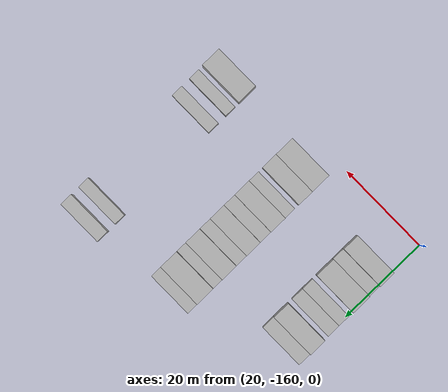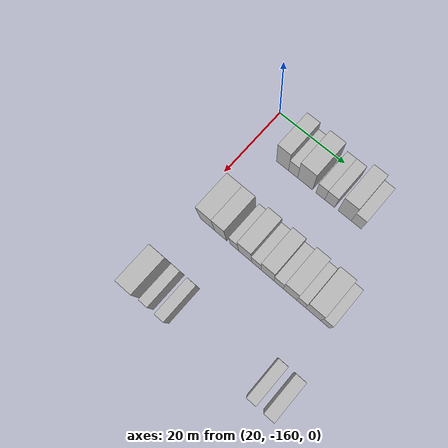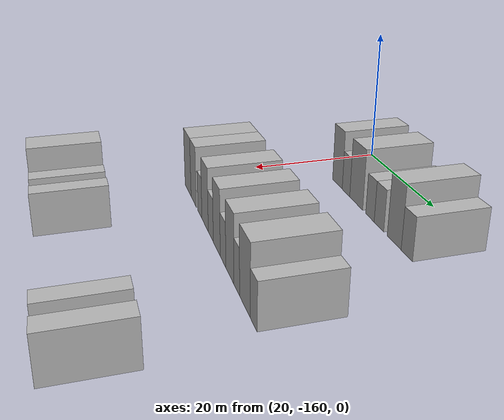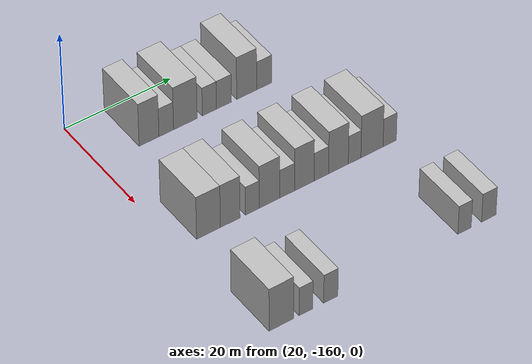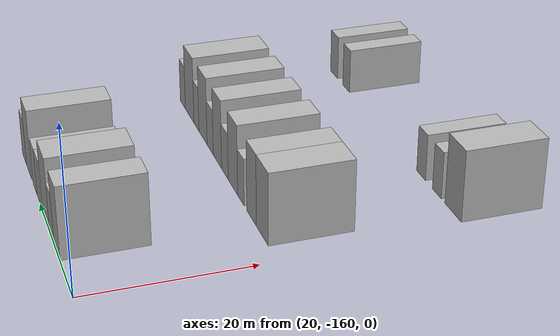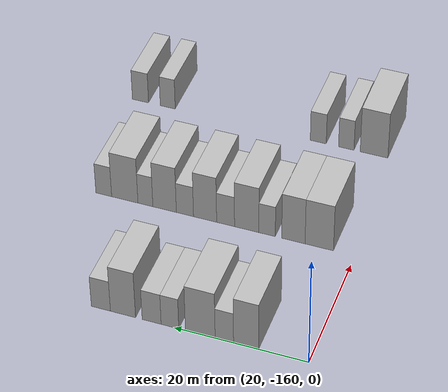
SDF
<sdf version="1.6">
 <world name="default">
  <model name="building_21">
   <static>1</static>
   <pose>25.0000 -150.7308 0 0.000000 0.000000 0.000000</pose>
   <link name="link">
    <pose>0 0 4.50 0 0 0</pose>
    <collision name="collision"><geometry><box><size>10.0000 3.7281 9.0000</size></box></geometry></collision>
    <visual name="visual">
     <cast_shadows>0</cast_shadows>
     <geometry><box><size>10.0000 3.7281 9.0000</size></box></geometry>
     <material>
      <script>
       <uri>model://HANNAS_wall/materials/scripts</uri>
       <uri>model://HANNAS_wall/materials/textures</uri>
       <name>vrc/HANNAS_wall</name>
      </script>
     </material>
    </visual>
   </link>
  </model>
  <model name="building_22">
   <static>1</static>
   <pose>25.0000 -147.4935 0 0.000000 0.000000 0.000000</pose>
   <link name="link">
    <pose>0 0 3.00 0 0 0</pose>
    <collision name="collision"><geometry><box><size>10.0000 2.7465 6.0000</size></box></geometry></collision>
    <visual name="visual">
     <cast_shadows>0</cast_shadows>
     <geometry><box><size>10.0000 2.7465 6.0000</size></box></geometry>
     <material>
      <script>
       <uri>model://HANNAS_wall/materials/scripts</uri>
       <uri>model://HANNAS_wall/materials/textures</uri>
       <name>vrc/HANNAS_wall</name>
      </script>
     </material>
    </visual>
   </link>
  </model>
  <model name="building_23">
   <static>1</static>
   <pose>25.0000 -143.8835 0 0.000000 0.000000 0.000000</pose>
   <link name="link">
    <pose>0 0 4.50 0 0 0</pose>
    <collision name="collision"><geometry><box><size>10.0000 4.4735 9.0000</size></box></geometry></collision>
    <visual name="visual">
     <cast_shadows>0</cast_shadows>
     <geometry><box><size>10.0000 4.4735 9.0000</size></box></geometry>
     <material>
      <script>
       <uri>model://HANNAS_wall/materials/scripts</uri>
       <uri>model://HANNAS_wall/materials/textures</uri>
       <name>vrc/HANNAS_wall</name>
      </script>
     </material>
    </visual>
   </link>
  </model>
  <model name="building_24">
   <static>1</static>
   <pose>25.0000 -139.3091 0 0.000000 0.000000 0.000000</pose>
   <link name="link">
    <pose>0 0 3.00 0 0 0</pose>
    <collision name="collision"><geometry><box><size>10.0000 2.6754 6.0000</size></box></geometry></collision>
    <visual name="visual">
     <cast_shadows>0</cast_shadows>
     <geometry><box><size>10.0000 2.6754 6.0000</size></box></geometry>
     <material>
      <script>
       <uri>model://HANNAS_wall/materials/scripts</uri>
       <uri>model://HANNAS_wall/materials/textures</uri>
       <name>vrc/HANNAS_wall</name>
      </script>
     </material>
    </visual>
   </link>
  </model>
  <model name="building_25">
   <static>1</static>
   <pose>25.0000 -136.5263 0 0.000000 0.000000 0.000000</pose>
   <link name="link">
    <pose>0 0 3.00 0 0 0</pose>
    <collision name="collision"><geometry><box><size>10.0000 2.8900 6.0000</size></box></geometry></collision>
    <visual name="visual">
     <cast_shadows>0</cast_shadows>
     <geometry><box><size>10.0000 2.8900 6.0000</size></box></geometry>
     <material>
      <script>
       <uri>model://HANNAS_wall/materials/scripts</uri>
       <uri>model://HANNAS_wall/materials/textures</uri>
       <name>vrc/HANNAS_wall</name>
      </script>
     </material>
    </visual>
   </link>
  </model>
  <model name="building_26">
   <static>1</static>
   <pose>25.0000 -132.1540 0 0.000000 0.000000 0.000000</pose>
   <link name="link">
    <pose>0 0 4.50 0 0 0</pose>
    <collision name="collision"><geometry><box><size>10.0000 3.8547 9.0000</size></box></geometry></collision>
    <visual name="visual">
     <cast_shadows>0</cast_shadows>
     <geometry><box><size>10.0000 3.8547 9.0000</size></box></geometry>
     <material>
      <script>
       <uri>model://HANNAS_wall/materials/scripts</uri>
       <uri>model://HANNAS_wall/materials/textures</uri>
       <name>vrc/HANNAS_wall</name>
      </script>
     </material>
    </visual>
   </link>
  </model>
  <model name="building_27">
   <static>1</static>
   <pose>25.0000 -128.7550 0 0.000000 0.000000 0.000000</pose>
   <link name="link">
    <pose>0 0 3.00 0 0 0</pose>
    <collision name="collision"><geometry><box><size>10.0000 2.9433 6.0000</size></box></geometry></collision>
    <visual name="visual">
     <cast_shadows>0</cast_shadows>
     <geometry><box><size>10.0000 2.9433 6.0000</size></box></geometry>
     <material>
      <script>
       <uri>model://HANNAS_wall/materials/scripts</uri>
       <uri>model://HANNAS_wall/materials/textures</uri>
       <name>vrc/HANNAS_wall</name>
      </script>
     </material>
    </visual>
   </link>
  </model>
  <model name="building_147">
   <static>1</static>
   <pose>47.0000 -154.4664 0 0.000000 0.000000 0.000000</pose>
   <link name="link">
    <pose>0 0 4.50 0 0 0</pose>
    <collision name="collision"><geometry><box><size>10.0000 4.4010 9.0000</size></box></geometry></collision>
    <visual name="visual">
     <cast_shadows>0</cast_shadows>
     <geometry><box><size>10.0000 4.4010 9.0000</size></box></geometry>
     <material>
      <script>
       <uri>model://HANNAS_wall/materials/scripts</uri>
       <uri>model://HANNAS_wall/materials/textures</uri>
       <name>vrc/HANNAS_wall</name>
      </script>
     </material>
    </visual>
   </link>
  </model>
  <model name="building_148">
   <static>1</static>
   <pose>47.0000 -150.4477 0 0.000000 0.000000 0.000000</pose>
   <link name="link">
    <pose>0 0 4.50 0 0 0</pose>
    <collision name="collision"><geometry><box><size>10.0000 3.6363 9.0000</size></box></geometry></collision>
    <visual name="visual">
     <cast_shadows>0</cast_shadows>
     <geometry><box><size>10.0000 3.6363 9.0000</size></box></geometry>
     <material>
      <script>
       <uri>model://HANNAS_wall/materials/scripts</uri>
       <uri>model://HANNAS_wall/materials/textures</uri>
       <name>vrc/HANNAS_wall</name>
      </script>
     </material>
    </visual>
   </link>
  </model>
  <model name="building_149">
   <static>1</static>
   <pose>47.0000 -146.3420 0 0.000000 0.000000 0.000000</pose>
   <link name="link">
    <pose>0 0 3.00 0 0 0</pose>
    <collision name="collision"><geometry><box><size>10.0000 2.5752 6.0000</size></box></geometry></collision>
    <visual name="visual">
     <cast_shadows>0</cast_shadows>
     <geometry><box><size>10.0000 2.5752 6.0000</size></box></geometry>
     <material>
      <script>
       <uri>model://HANNAS_wall/materials/scripts</uri>
       <uri>model://HANNAS_wall/materials/textures</uri>
       <name>vrc/HANNAS_wall</name>
      </script>
     </material>
    </visual>
   </link>
  </model>
  <model name="building_150">
   <static>1</static>
   <pose>47.0000 -143.1336 0 0.000000 0.000000 0.000000</pose>
   <link name="link">
    <pose>0 0 4.50 0 0 0</pose>
    <collision name="collision"><geometry><box><size>10.0000 3.8415 9.0000</size></box></geometry></collision>
    <visual name="visual">
     <cast_shadows>0</cast_shadows>
     <geometry><box><size>10.0000 3.8415 9.0000</size></box></geometry>
     <material>
      <script>
       <uri>model://HANNAS_wall/materials/scripts</uri>
       <uri>model://HANNAS_wall/materials/textures</uri>
       <name>vrc/HANNAS_wall</name>
      </script>
     </material>
    </visual>
   </link>
  </model>
  <model name="building_151">
   <static>1</static>
   <pose>47.0000 -139.7941 0 0.000000 0.000000 0.000000</pose>
   <link name="link">
    <pose>0 0 3.00 0 0 0</pose>
    <collision name="collision"><geometry><box><size>10.0000 2.8375 6.0000</size></box></geometry></collision>
    <visual name="visual">
     <cast_shadows>0</cast_shadows>
     <geometry><box><size>10.0000 2.8375 6.0000</size></box></geometry>
     <material>
      <script>
       <uri>model://HANNAS_wall/materials/scripts</uri>
       <uri>model://HANNAS_wall/materials/textures</uri>
       <name>vrc/HANNAS_wall</name>
      </script>
     </material>
    </visual>
   </link>
  </model>
  <model name="building_152">
   <static>1</static>
   <pose>47.0000 -136.5319 0 0.000000 0.000000 0.000000</pose>
   <link name="link">
    <pose>0 0 4.50 0 0 0</pose>
    <collision name="collision"><geometry><box><size>10.0000 3.6868 9.0000</size></box></geometry></collision>
    <visual name="visual">
     <cast_shadows>0</cast_shadows>
     <geometry><box><size>10.0000 3.6868 9.0000</size></box></geometry>
     <material>
      <script>
       <uri>model://HANNAS_wall/materials/scripts</uri>
       <uri>model://HANNAS_wall/materials/textures</uri>
       <name>vrc/HANNAS_wall</name>
      </script>
     </material>
    </visual>
   </link>
  </model>
  <model name="building_153">
   <static>1</static>
   <pose>47.0000 -133.3145 0 0.000000 0.000000 0.000000</pose>
   <link name="link">
    <pose>0 0 3.00 0 0 0</pose>
    <collision name="collision"><geometry><box><size>10.0000 2.7479 6.0000</size></box></geometry></collision>
    <visual name="visual">
     <cast_shadows>0</cast_shadows>
     <geometry><box><size>10.0000 2.7479 6.0000</size></box></geometry>
     <material>
      <script>
       <uri>model://HANNAS_wall/materials/scripts</uri>
       <uri>model://HANNAS_wall/materials/textures</uri>
       <name>vrc/HANNAS_wall</name>
      </script>
     </material>
    </visual>
   </link>
  </model>
  <model name="building_154">
   <static>1</static>
   <pose>47.0000 -130.0484 0 0.000000 0.000000 0.000000</pose>
   <link name="link">
    <pose>0 0 4.50 0 0 0</pose>
    <collision name="collision"><geometry><box><size>10.0000 3.7845 9.0000</size></box></geometry></collision>
    <visual name="visual">
     <cast_shadows>0</cast_shadows>
     <geometry><box><size>10.0000 3.7845 9.0000</size></box></geometry>
     <material>
      <script>
       <uri>model://HANNAS_wall/materials/scripts</uri>
       <uri>model://HANNAS_wall/materials/textures</uri>
       <name>vrc/HANNAS_wall</name>
      </script>
     </material>
    </visual>
   </link>
  </model>
  <model name="building_155">
   <static>1</static>
   <pose>47.0000 -126.9506 0 0.000000 0.000000 0.000000</pose>
   <link name="link">
    <pose>0 0 3.00 0 0 0</pose>
    <collision name="collision"><geometry><box><size>10.0000 2.4111 6.0000</size></box></geometry></collision>
    <visual name="visual">
     <cast_shadows>0</cast_shadows>
     <geometry><box><size>10.0000 2.4111 6.0000</size></box></geometry>
     <material>
      <script>
       <uri>model://HANNAS_wall/materials/scripts</uri>
       <uri>model://HANNAS_wall/materials/textures</uri>
       <name>vrc/HANNAS_wall</name>
      </script>
     </material>
    </visual>
   </link>
  </model>
  <model name="building_156">
   <static>1</static>
   <pose>47.0000 -123.6045 0 0.000000 0.000000 0.000000</pose>
   <link name="link">
    <pose>0 0 4.50 0 0 0</pose>
    <collision name="collision"><geometry><box><size>10.0000 4.2811 9.0000</size></box></geometry></collision>
    <visual name="visual">
     <cast_shadows>0</cast_shadows>
     <geometry><box><size>10.0000 4.2811 9.0000</size></box></geometry>
     <material>
      <script>
       <uri>model://HANNAS_wall/materials/scripts</uri>
       <uri>model://HANNAS_wall/materials/textures</uri>
       <name>vrc/HANNAS_wall</name>
      </script>
     </material>
    </visual>
   </link>
  </model>
  <model name="building_157">
   <static>1</static>
   <pose>47.0000 -120.1781 0 0.000000 0.000000 0.000000</pose>
   <link name="link">
    <pose>0 0 3.00 0 0 0</pose>
    <collision name="collision"><geometry><box><size>10.0000 2.5718 6.0000</size></box></geometry></collision>
    <visual name="visual">
     <cast_shadows>0</cast_shadows>
     <geometry><box><size>10.0000 2.5718 6.0000</size></box></geometry>
     <material>
      <script>
       <uri>model://HANNAS_wall/materials/scripts</uri>
       <uri>model://HANNAS_wall/materials/textures</uri>
       <name>vrc/HANNAS_wall</name>
      </script>
     </material>
    </visual>
   </link>
  </model>
  <model name="building_272">
   <static>1</static>
   <pose>69.0000 -156.3303 0 0.000000 0.000000 0.000000</pose>
   <link name="link">
    <pose>0 0 4.50 0 0 0</pose>
    <collision name="collision"><geometry><box><size>10.0000 4.4726 9.0000</size></box></geometry></collision>
    <visual name="visual">
     <cast_shadows>0</cast_shadows>
     <geometry><box><size>10.0000 4.4726 9.0000</size></box></geometry>
     <material>
      <script>
       <uri>model://HANNAS_wall/materials/scripts</uri>
       <uri>model://HANNAS_wall/materials/textures</uri>
       <name>vrc/HANNAS_wall</name>
      </script>
     </material>
    </visual>
   </link>
  </model>
  <model name="building_273">
   <static>1</static>
   <pose>69.0000 -151.8341 0 0.000000 0.000000 0.000000</pose>
   <link name="link">
    <pose>0 0 3.00 0 0 0</pose>
    <collision name="collision"><geometry><box><size>10.0000 2.5199 6.0000</size></box></geometry></collision>
    <visual name="visual">
     <cast_shadows>0</cast_shadows>
     <geometry><box><size>10.0000 2.5199 6.0000</size></box></geometry>
     <material>
      <script>
       <uri>model://HANNAS_wall/materials/scripts</uri>
       <uri>model://HANNAS_wall/materials/textures</uri>
       <name>vrc/HANNAS_wall</name>
      </script>
     </material>
    </visual>
   </link>
  </model>
  <model name="building_274">
   <static>1</static>
   <pose>69.0000 -147.2666 0 0.000000 0.000000 0.000000</pose>
   <link name="link">
    <pose>0 0 3.00 0 0 0</pose>
    <collision name="collision"><geometry><box><size>10.0000 2.6151 6.0000</size></box></geometry></collision>
    <visual name="visual">
     <cast_shadows>0</cast_shadows>
     <geometry><box><size>10.0000 2.6151 6.0000</size></box></geometry>
     <material>
      <script>
       <uri>model://HANNAS_wall/materials/scripts</uri>
       <uri>model://HANNAS_wall/materials/textures</uri>
       <name>vrc/HANNAS_wall</name>
      </script>
     </material>
    </visual>
   </link>
  </model>
  <model name="building_275">
   <static>1</static>
   <pose>69.0000 -122.1341 0 0.000000 0.000000 0.000000</pose>
   <link name="link">
    <pose>0 0 3.00 0 0 0</pose>
    <collision name="collision"><geometry><box><size>10.0000 2.5499 6.0000</size></box></geometry></collision>
    <visual name="visual">
     <cast_shadows>0</cast_shadows>
     <geometry><box><size>10.0000 2.5499 6.0000</size></box></geometry>
     <material>
      <script>
       <uri>model://HANNAS_wall/materials/scripts</uri>
       <uri>model://HANNAS_wall/materials/textures</uri>
       <name>vrc/HANNAS_wall</name>
      </script>
     </material>
    </visual>
   </link>
  </model>
  <model name="building_276">
   <static>1</static>
   <pose>69.0000 -117.4764 0 0.000000 0.000000 0.000000</pose>
   <link name="link">
    <pose>0 0 3.00 0 0 0</pose>
    <collision name="collision"><geometry><box><size>10.0000 2.7655 6.0000</size></box></geometry></collision>
    <visual name="visual">
     <cast_shadows>0</cast_shadows>
     <geometry><box><size>10.0000 2.7655 6.0000</size></box></geometry>
     <material>
      <script>
       <uri>model://HANNAS_wall/materials/scripts</uri>
       <uri>model://HANNAS_wall/materials/textures</uri>
       <name>vrc/HANNAS_wall</name>
      </script>
     </material>
    </visual>
   </link>
  </model>
 </world>
</sdf>
